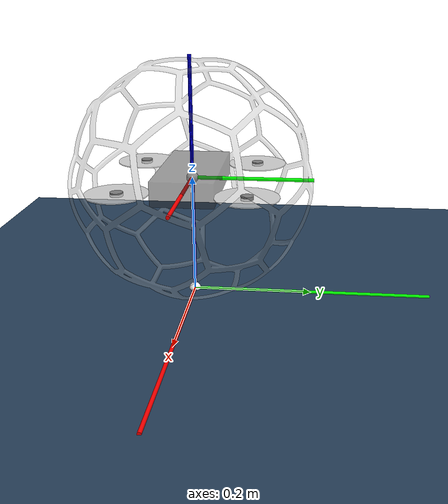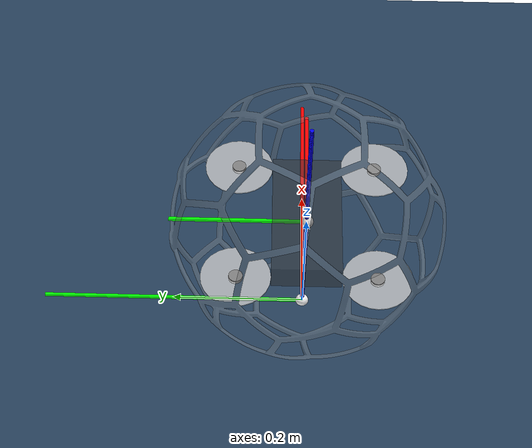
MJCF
<mujoco model="quadcopter">
  <option gravity="0 0 -9.81" timestep="0.002"/>

  <asset>
    <texture type="2d" name="groundplane" builtin="checker" mark="edge" rgb1="0.2 0.3 0.4" rgb2="0.1 0.2 0.3" markrgb="0.8 0.8 0.8" width="300" height="300"/>
    <material name="groundplane" texture="groundplane" texuniform="true" texrepeat="5 5" reflectance="0.2"/>

    <texture name="prop_tex" type="2d" builtin="checker" width="64" height="64" rgb1="0.8 0.8 0.8" rgb2="0 0 0"/>
    <material name="prop_mat" texture="prop_tex" texrepeat="1 1" texuniform="true"/>

    <mesh name="cage_mesh" file="cage (2).stl" scale="0.00181854 0.00181854 0.00181854"/>
  </asset>

  <visual>
    <global offwidth="1920" offheight="1080"/>
    <headlight diffuse="0.6 0.6 0.6" ambient="0.3 0.3 0.3" specular="0 0 0"/>
    <rgba haze="0.15 0.25 0.35 1"/>
  </visual>

  <worldbody>
    <light pos="0 0 1.5" dir="0 0 -1" directional="true"/>

    <geom name="floor" size="0 0 0.05" type="plane" material="groundplane" friction="1.0 0.005 0.0001"/>

    <body name="world_frame" pos="0 0 0">
      <geom type="sphere" size="0.01" rgba="1 1 1 1" contype="0" conaffinity="0"/>
      <geom type="cylinder" fromto="0 0 0 0.4 0 0" size="0.003" rgba="1 0 0 1" contype="0" conaffinity="0"/>
      <geom type="cylinder" fromto="0 0 0 0 0.4 0" size="0.003" rgba="0 1 0 1" contype="0" conaffinity="0"/>
      <geom type="cylinder" fromto="0 0 0 0 0 0.4" size="0.003" rgba="0 0 1 1" contype="0" conaffinity="0"/>
    </body>

    <body name="base" pos="0 0 0.2">
      <freejoint/>

      <geom name="chassis" type="box" size=".1 .05 .02" rgba="0.2 0.2 0.2 0.5" mass="0.25"/>

      <geom name="cage" type="sphere" mass="0" size="0.2" pos="0.0 0 0.0" rgba="1 0 0 0.0"/>
      <geom name="cage_visual" type="mesh" mesh="cage_mesh" pos="0.0 0 0.0" rgba="0.65 0.65 0.65 0.3" contype="0" conaffinity="0" mass="0"/>

      <site name="body_frame" pos="0 0 0"/>
      <geom type="sphere" size="0.01" rgba="1 1 1 1" contype="0" conaffinity="0" mass="0"/>
      <geom type="cylinder" fromto="0 0 0 0.2 0 0" size="0.003" rgba="1 0 0 1" contype="0" conaffinity="0" mass="0"/>
      <geom type="cylinder" fromto="0 0 0 0 0.2 0" size="0.003" rgba="0 1 0 1" contype="0" conaffinity="0" mass="0"/>
      <geom type="cylinder" fromto="0 0 0 0 0 0.2" size="0.003" rgba="0 0 1 1" contype="0" conaffinity="0" mass="0"/>

      <body name="rotor_rr" pos="-0.1 -0.1 0">
        <inertial pos="0 0 0" mass="0.05" diaginertia="5e-6 5e-6 9e-6"/>
        <geom type="cylinder" size=".05 .001" rgba="0.8 0.8 0.8 0.8" material="prop_mat"/>
        <site name="motor_rr" type="cylinder" size="0.01 0.003" pos="0 0 0"/>
      </body>

      <body name="rotor_fr" pos="0.1 -0.1 0">
        <inertial pos="0 0 0" mass="0.05" diaginertia="5e-6 5e-6 9e-6"/>
        <geom type="cylinder" size=".05 .001" rgba="0.8 0.8 0.8 0.8" material="prop_mat"/>
        <site name="motor_fr" type="cylinder" size="0.01 0.003" pos="0 0 0"/>
      </body>

      <body name="rotor_rl" pos="-0.1 0.1 0">
        <inertial pos="0 0 0" mass="0.05" diaginertia="5e-6 5e-6 9e-6"/>
        <geom type="cylinder" size=".05 .001" rgba="0.8 0.8 0.8 0.8" material="prop_mat"/>
        <site name="motor_rl" type="cylinder" size="0.01 0.003" pos="0 0 0"/>
      </body>

      <body name="rotor_fl" pos="0.1 0.1 0">
        <inertial pos="0 0 0" mass="0.05" diaginertia="5e-6 5e-6 9e-6"/>
        <geom type="cylinder" size=".05 .001" rgba="0.8 0.8 0.8 0.8" material="prop_mat"/>
        <site name="motor_fl" type="cylinder" size="0.01 0.003" pos="0 0 0"/>
      </body>

    </body>

  </worldbody>

  <actuator>
    <motor name="motor_rr" site="motor_rr" gear="0 0 1 0 0 0.02" ctrllimited="true" ctrlrange="-1000 1000"/>
    <motor name="motor_fr" site="motor_fr" gear="0 0 1 0 0 -0.02" ctrllimited="true" ctrlrange="-1000 1000"/>
    <motor name="motor_rl" site="motor_rl" gear="0 0 1 0 0 -0.02" ctrllimited="true" ctrlrange="-1000 1000"/>
    <motor name="motor_fl" site="motor_fl" gear="0 0 1 0 0 0.02" ctrllimited="true" ctrlrange="-1000 1000"/>
  </actuator>

  <sensor>
    <accelerometer name="accel" site="body_frame" noise="0.005" cutoff="100"/>
    <gyro name="gyro" site="body_frame" noise="0.005" cutoff="100"/>
    <framequat name="quat" objtype="site" objname="body_frame"/>
  </sensor>

</mujoco>
